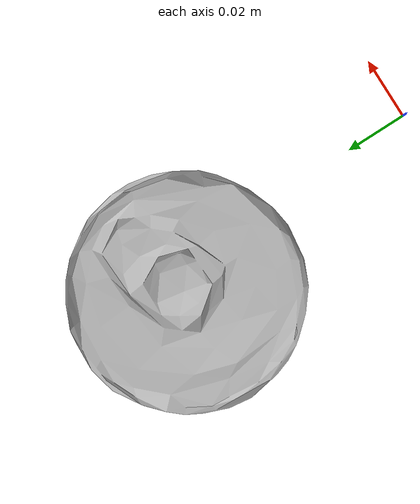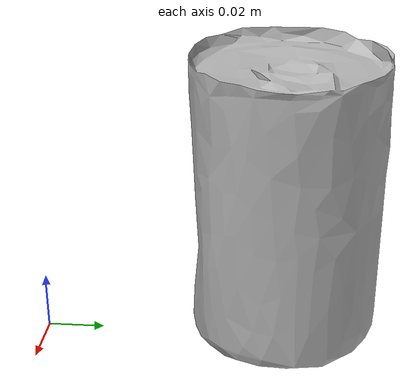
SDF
<?xml version="1.0" ?>
<sdf version="1.4">
  <model name='ycb_005_tomato_soup_can'>
    <link name='body'>
      <inertial>
        <mass>0.349</mass>
        <pose>-0.00934209937509 0.0842242445057 0.0500258328067 0 0 0</pose>
        <inertia>
          <ixx>0.000349926494745</ixx>
          <ixy>-1.46031435577e-07</ixy>
          <ixz>-8.09615684957e-07</ixz>
          <iyy>0.000352671686652</iyy>
          <iyz>3.54459054371e-07</iyz>
          <izz>0.000191836705141</izz>
        </inertia>
      </inertial>
      <visual name='ycb_005_tomato_soup_can_visual'>
        <pose>0 0 0 0 0 0</pose>
        <geometry>
          <mesh>
            <uri>model://ycb_005_tomato_soup_can/meshes/textured.dae</uri>
          </mesh>
        </geometry>
      </visual>
      <collision name='ycb_005_tomato_soup_can_collision'>
        <pose>0 0 0 0 0 0</pose>
        <geometry>
          <mesh>
            <uri>model://ycb_005_tomato_soup_can/meshes/nontextured.stl</uri>
          </mesh>
        </geometry>
        <max_contacts>10</max_contacts>
        <surface>
          <contact>
            <ode>
              <kp>1e15</kp>
              <kd>1e13</kd>
            </ode>
          </contact>
        </surface>
      </collision>
    </link>
  </model>
</sdf>
